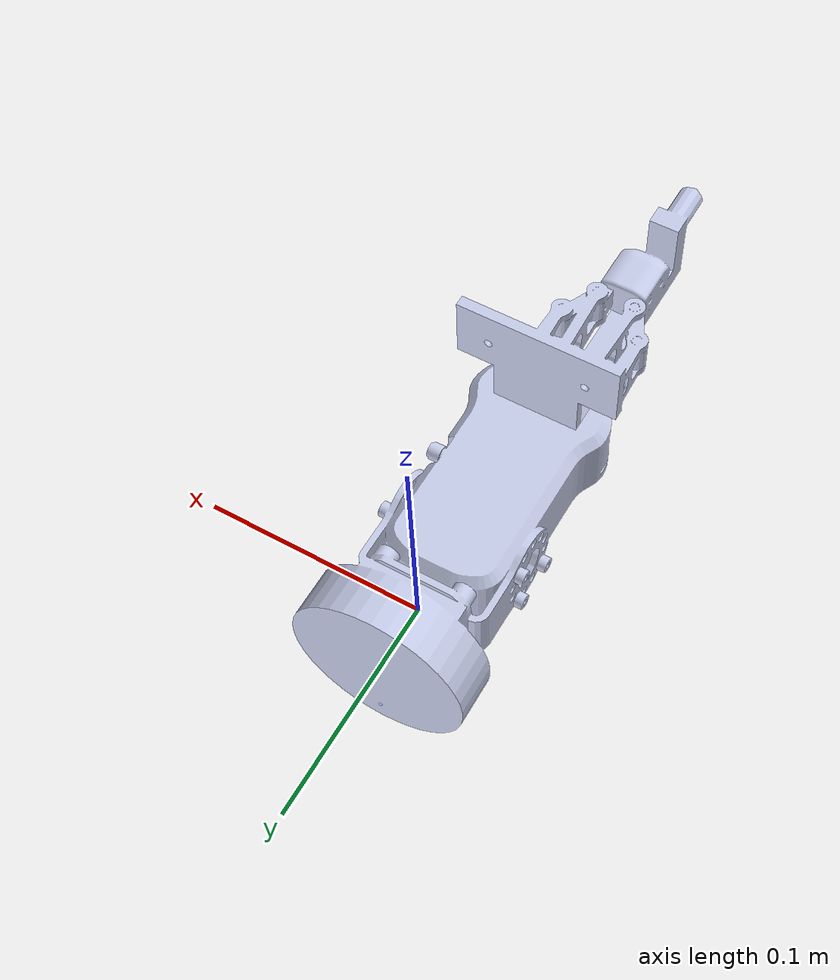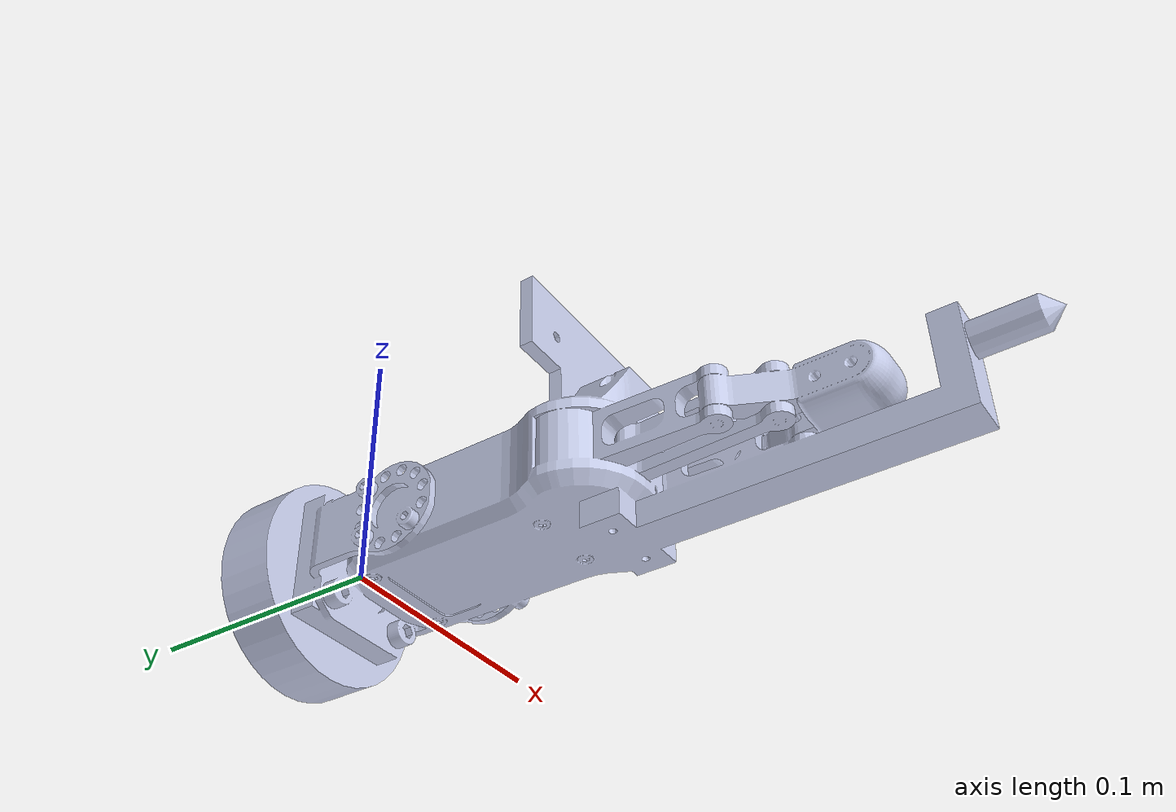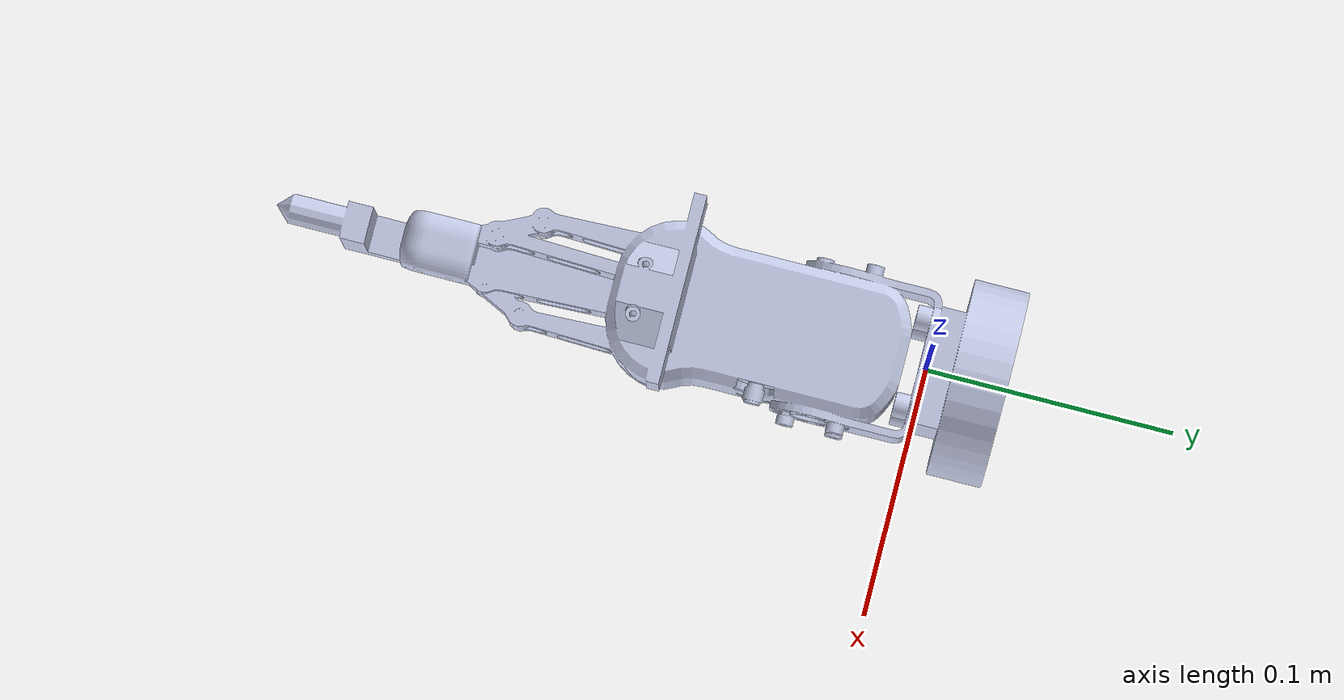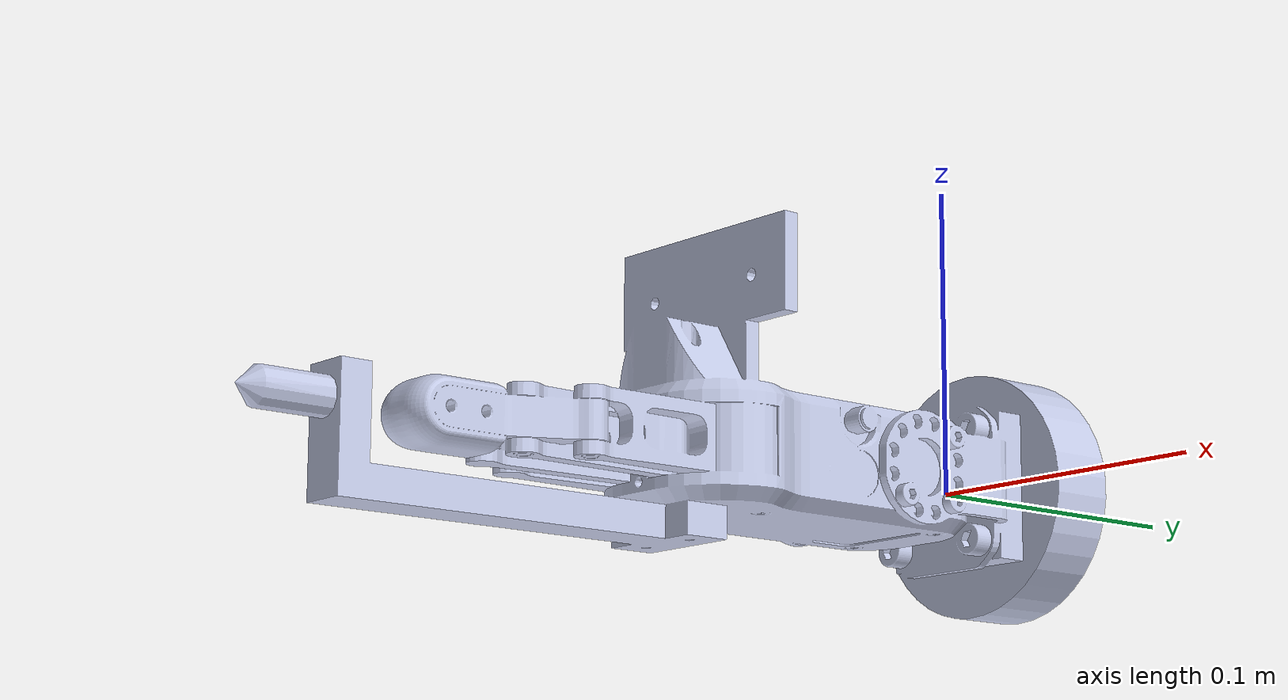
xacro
<?xml version="1.0" ?>
<robot xmlns:xacro="http://www.ros.org/wiki/xacro" name="ur5">
  <link name="gripper_body">
    <inertial>
      <origin xyz="2.1478E-05 -0.056983 0.0015312" rpy="0 0 0"/>
      <mass value="0.44225"/>
      <inertia ixx="0.00031483" ixy="-3.882E-08" ixz="3.7547E-08" iyy="0.00016784" iyz="6.6712E-06" izz="0.00035617"/>
    </inertial>
    <visual>
      <origin xyz="0 0 0" rpy="0 0 0"/>
      <geometry>
      <mesh filename="package://robot_model/meshes/gripper/gripper_body.STL"/>
    </geometry>
    <material name="">
      <color rgba="0.79216 0.81961 0.93333 1"/>
    </material>
    </visual>
      <collision>
      <origin xyz="0 0 0" rpy="0 0 0"/>
      <geometry>
      <mesh filename="package://robot_model/meshes/gripper/gripper_body.STL"/>
    </geometry>
    </collision>
</link>
</robot>
